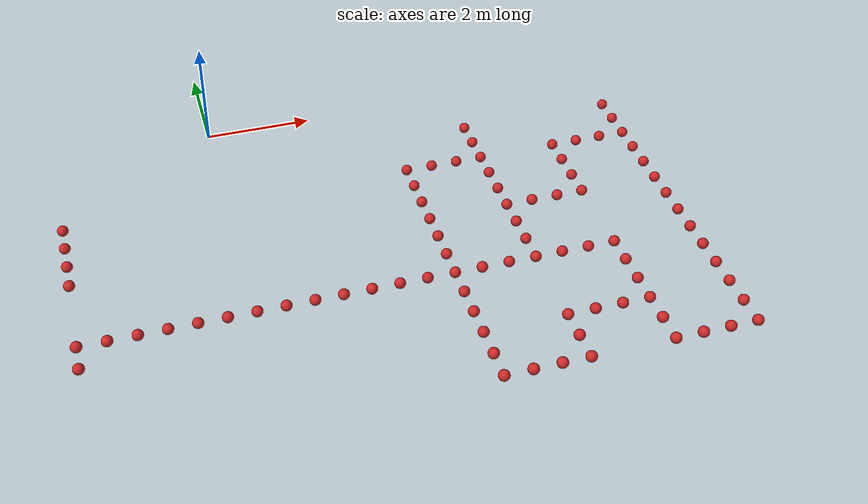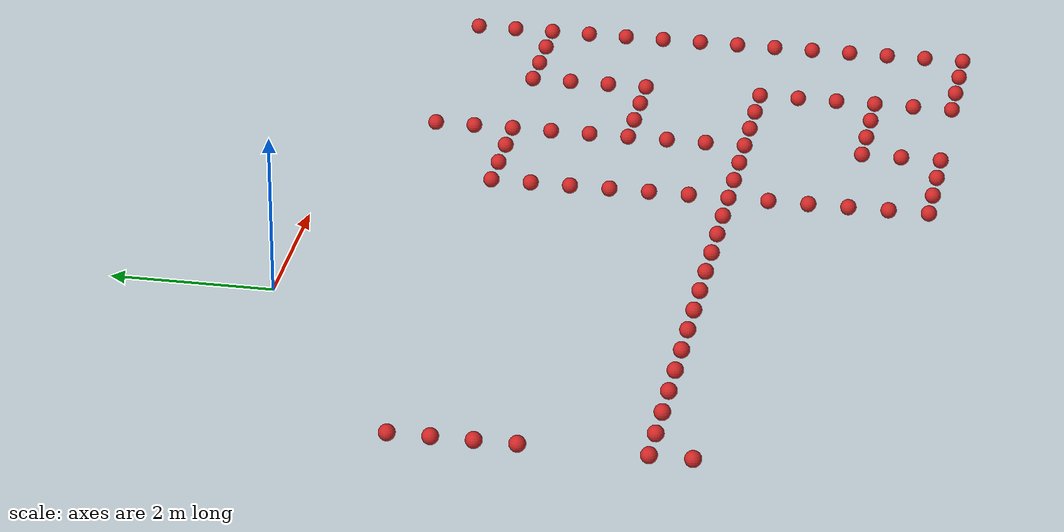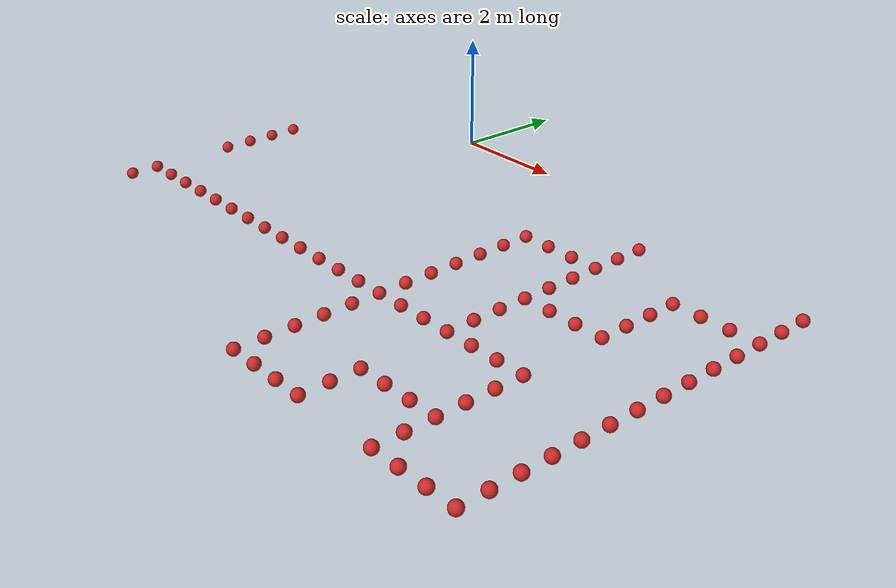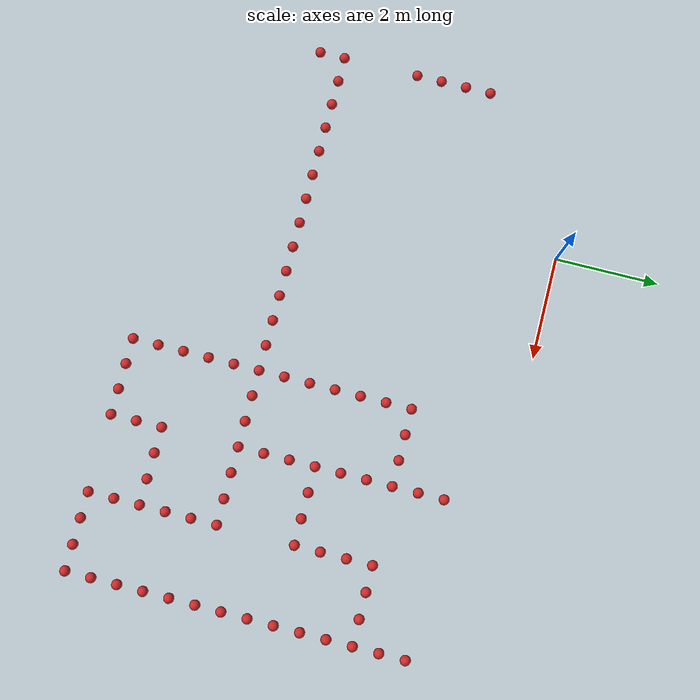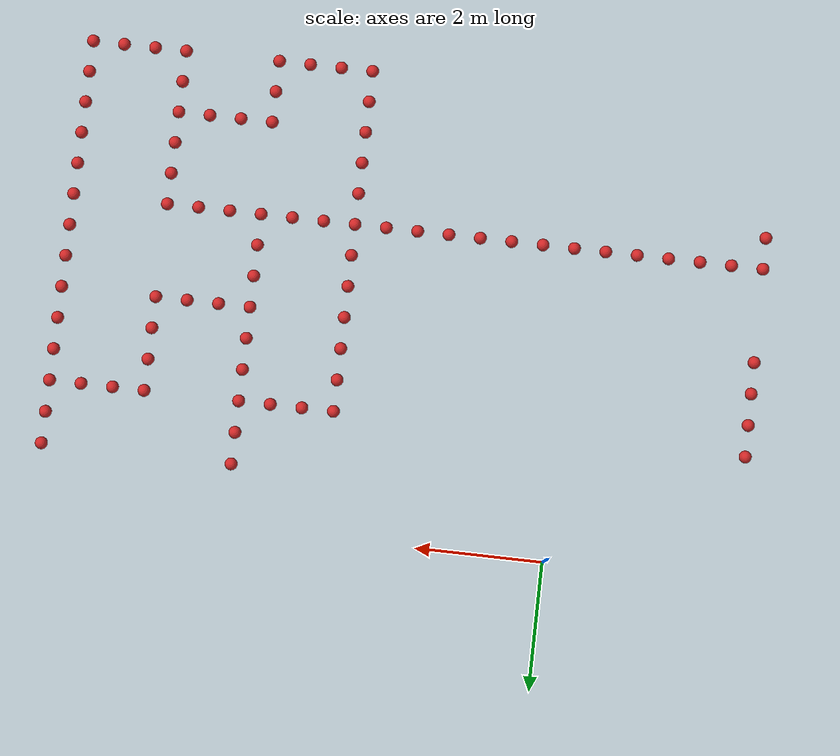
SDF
<sdf version="1.6">
 <model name="level1">
  <link name="Score_Point83">
   <collision name="Score_Point_Collision83">
    <geometry><sphere><radius>0.1</radius></sphere></geometry>
   </collision>
   <visual name="Score_Point_Visual83">
    <geometry><sphere><radius>0.1</radius></sphere></geometry>
    <material>
     <script><uri>file://media/materials/scripts/gazebo.material</uri><name>Gazebo/Red</name></script>
     <ambient>1 1 1 1</ambient>
    </material>
    <meta><layer>0</layer></meta>
   </visual>
   <pose>-3.0 -5.5 -0.08 0 0 0</pose>
   <script><uri>file://scripts/score_point_script.py</uri></script>
  </link>
  <link name="Score_Point84">
   <collision name="Score_Point_Collision84">
    <geometry><sphere><radius>0.1</radius></sphere></geometry>
   </collision>
   <visual name="Score_Point_Visual84">
    <geometry><sphere><radius>0.1</radius></sphere></geometry>
    <material>
     <script><uri>file://media/materials/scripts/gazebo.material</uri><name>Gazebo/Red</name></script>
     <ambient>1 1 1 1</ambient>
    </material>
    <meta><layer>0</layer></meta>
   </visual>
   <pose>-3.0 -5.0 -0.08 0 0 0</pose>
   <script><uri>file://scripts/score_point_script.py</uri></script>
  </link>
  <link name="Score_Point85">
   <collision name="Score_Point_Collision85">
    <geometry><sphere><radius>0.1</radius></sphere></geometry>
   </collision>
   <visual name="Score_Point_Visual85">
    <geometry><sphere><radius>0.1</radius></sphere></geometry>
    <material>
     <script><uri>file://media/materials/scripts/gazebo.material</uri><name>Gazebo/Red</name></script>
     <ambient>1 1 1 1</ambient>
    </material>
    <meta><layer>0</layer></meta>
   </visual>
   <pose>-3.0 -3.5 -0.08 0 0 0</pose>
   <script><uri>file://scripts/score_point_script.py</uri></script>
  </link>
  <link name="Score_Point86">
   <collision name="Score_Point_Collision86">
    <geometry><sphere><radius>0.1</radius></sphere></geometry>
   </collision>
   <visual name="Score_Point_Visual86">
    <geometry><sphere><radius>0.1</radius></sphere></geometry>
    <material>
     <script><uri>file://media/materials/scripts/gazebo.material</uri><name>Gazebo/Red</name></script>
     <ambient>1 1 1 1</ambient>
    </material>
    <meta><layer>0</layer></meta>
   </visual>
   <pose>-3.0 -3.0 -0.08 0 0 0</pose>
   <script><uri>file://scripts/score_point_script.py</uri></script>
  </link>
  <link name="Score_Point87">
   <collision name="Score_Point_Collision87">
    <geometry><sphere><radius>0.1</radius></sphere></geometry>
   </collision>
   <visual name="Score_Point_Visual87">
    <geometry><sphere><radius>0.1</radius></sphere></geometry>
    <material>
     <script><uri>file://media/materials/scripts/gazebo.material</uri><name>Gazebo/Red</name></script>
     <ambient>1 1 1 1</ambient>
    </material>
    <meta><layer>0</layer></meta>
   </visual>
   <pose>-3.0 -2.5 -0.08 0 0 0</pose>
   <script><uri>file://scripts/score_point_script.py</uri></script>
  </link>
  <link name="Score_Point88">
   <collision name="Score_Point_Collision88">
    <geometry><sphere><radius>0.1</radius></sphere></geometry>
   </collision>
   <visual name="Score_Point_Visual88">
    <geometry><sphere><radius>0.1</radius></sphere></geometry>
    <material>
     <script><uri>file://media/materials/scripts/gazebo.material</uri><name>Gazebo/Red</name></script>
     <ambient>1 1 1 1</ambient>
    </material>
    <meta><layer>0</layer></meta>
   </visual>
   <pose>-3.0 -2.0 -0.08 0 0 0</pose>
   <script><uri>file://scripts/score_point_script.py</uri></script>
  </link>
  <link name="Score_Point99">
   <collision name="Score_Point_Collision99">
    <geometry><sphere><radius>0.1</radius></sphere></geometry>
   </collision>
   <visual name="Score_Point_Visual99">
    <geometry><sphere><radius>0.1</radius></sphere></geometry>
    <material>
     <script><uri>file://media/materials/scripts/gazebo.material</uri><name>Gazebo/Red</name></script>
     <ambient>1 1 1 1</ambient>
    </material>
    <meta><layer>0</layer></meta>
   </visual>
   <pose>-2.5 -5.0 -0.08 0 0 0</pose>
   <script><uri>file://scripts/score_point_script.py</uri></script>
  </link>
  <link name="Score_Point101">
   <collision name="Score_Point_Collision101">
    <geometry><sphere><radius>0.1</radius></sphere></geometry>
   </collision>
   <visual name="Score_Point_Visual101">
    <geometry><sphere><radius>0.1</radius></sphere></geometry>
    <material>
     <script><uri>file://media/materials/scripts/gazebo.material</uri><name>Gazebo/Red</name></script>
     <ambient>1 1 1 1</ambient>
    </material>
    <meta><layer>0</layer></meta>
   </visual>
   <pose>-2.0 -5.0 -0.08 0 0 0</pose>
   <script><uri>file://scripts/score_point_script.py</uri></script>
  </link>
  <link name="Score_Point103">
   <collision name="Score_Point_Collision103">
    <geometry><sphere><radius>0.1</radius></sphere></geometry>
   </collision>
   <visual name="Score_Point_Visual103">
    <geometry><sphere><radius>0.1</radius></sphere></geometry>
    <material>
     <script><uri>file://media/materials/scripts/gazebo.material</uri><name>Gazebo/Red</name></script>
     <ambient>1 1 1 1</ambient>
    </material>
    <meta><layer>0</layer></meta>
   </visual>
   <pose>-1.5 -5.0 -0.08 0 0 0</pose>
   <script><uri>file://scripts/score_point_script.py</uri></script>
  </link>
  <link name="Score_Point105">
   <collision name="Score_Point_Collision105">
    <geometry><sphere><radius>0.1</radius></sphere></geometry>
   </collision>
   <visual name="Score_Point_Visual105">
    <geometry><sphere><radius>0.1</radius></sphere></geometry>
    <material>
     <script><uri>file://media/materials/scripts/gazebo.material</uri><name>Gazebo/Red</name></script>
     <ambient>1 1 1 1</ambient>
    </material>
    <meta><layer>0</layer></meta>
   </visual>
   <pose>-1.0 -5.0 -0.08 0 0 0</pose>
   <script><uri>file://scripts/score_point_script.py</uri></script>
  </link>
  <link name="Score_Point107">
   <collision name="Score_Point_Collision107">
    <geometry><sphere><radius>0.1</radius></sphere></geometry>
   </collision>
   <visual name="Score_Point_Visual107">
    <geometry><sphere><radius>0.1</radius></sphere></geometry>
    <material>
     <script><uri>file://media/materials/scripts/gazebo.material</uri><name>Gazebo/Red</name></script>
     <ambient>1 1 1 1</ambient>
    </material>
    <meta><layer>0</layer></meta>
   </visual>
   <pose>-0.5 -5.0 -0.08 0 0 0</pose>
   <script><uri>file://scripts/score_point_script.py</uri></script>
  </link>
  <link name="Score_Point109">
   <collision name="Score_Point_Collision109">
    <geometry><sphere><radius>0.1</radius></sphere></geometry>
   </collision>
   <visual name="Score_Point_Visual109">
    <geometry><sphere><radius>0.1</radius></sphere></geometry>
    <material>
     <script><uri>file://media/materials/scripts/gazebo.material</uri><name>Gazebo/Red</name></script>
     <ambient>1 1 1 1</ambient>
    </material>
    <meta><layer>0</layer></meta>
   </visual>
   <pose>0.0 -5.0 -0.08 0 0 0</pose>
   <script><uri>file://scripts/score_point_script.py</uri></script>
  </link>
  <link name="Score_Point111">
   <collision name="Score_Point_Collision111">
    <geometry><sphere><radius>0.1</radius></sphere></geometry>
   </collision>
   <visual name="Score_Point_Visual111">
    <geometry><sphere><radius>0.1</radius></sphere></geometry>
    <material>
     <script><uri>file://media/materials/scripts/gazebo.material</uri><name>Gazebo/Red</name></script>
     <ambient>1 1 1 1</ambient>
    </material>
    <meta><layer>0</layer></meta>
   </visual>
   <pose>0.5 -5.0 -0.08 0 0 0</pose>
   <script><uri>file://scripts/score_point_script.py</uri></script>
  </link>
  <link name="Score_Point113">
   <collision name="Score_Point_Collision113">
    <geometry><sphere><radius>0.1</radius></sphere></geometry>
   </collision>
   <visual name="Score_Point_Visual113">
    <geometry><sphere><radius>0.1</radius></sphere></geometry>
    <material>
     <script><uri>file://media/materials/scripts/gazebo.material</uri><name>Gazebo/Red</name></script>
     <ambient>1 1 1 1</ambient>
    </material>
    <meta><layer>0</layer></meta>
   </visual>
   <pose>1.0 -5.0 -0.08 0 0 0</pose>
   <script><uri>file://scripts/score_point_script.py</uri></script>
  </link>
  <link name="Score_Point115">
   <collision name="Score_Point_Collision115">
    <geometry><sphere><radius>0.1</radius></sphere></geometry>
   </collision>
   <visual name="Score_Point_Visual115">
    <geometry><sphere><radius>0.1</radius></sphere></geometry>
    <material>
     <script><uri>file://media/materials/scripts/gazebo.material</uri><name>Gazebo/Red</name></script>
     <ambient>1 1 1 1</ambient>
    </material>
    <meta><layer>0</layer></meta>
   </visual>
   <pose>1.5 -5.0 -0.08 0 0 0</pose>
   <script><uri>file://scripts/score_point_script.py</uri></script>
  </link>
  <link name="Score_Point117">
   <collision name="Score_Point_Collision117">
    <geometry><sphere><radius>0.1</radius></sphere></geometry>
   </collision>
   <visual name="Score_Point_Visual117">
    <geometry><sphere><radius>0.1</radius></sphere></geometry>
    <material>
     <script><uri>file://media/materials/scripts/gazebo.material</uri><name>Gazebo/Red</name></script>
     <ambient>1 1 1 1</ambient>
    </material>
    <meta><layer>0</layer></meta>
   </visual>
   <pose>2.0 -5.0 -0.08 0 0 0</pose>
   <script><uri>file://scripts/score_point_script.py</uri></script>
  </link>
  <link name="Score_Point119">
   <collision name="Score_Point_Collision119">
    <geometry><sphere><radius>0.1</radius></sphere></geometry>
   </collision>
   <visual name="Score_Point_Visual119">
    <geometry><sphere><radius>0.1</radius></sphere></geometry>
    <material>
     <script><uri>file://media/materials/scripts/gazebo.material</uri><name>Gazebo/Red</name></script>
     <ambient>1 1 1 1</ambient>
    </material>
    <meta><layer>0</layer></meta>
   </visual>
   <pose>2.5 -5.0 -0.08 0 0 0</pose>
   <script><uri>file://scripts/score_point_script.py</uri></script>
  </link>
  <link name="Score_Point121">
   <collision name="Score_Point_Collision121">
    <geometry><sphere><radius>0.1</radius></sphere></geometry>
   </collision>
   <visual name="Score_Point_Visual121">
    <geometry><sphere><radius>0.1</radius></sphere></geometry>
    <material>
     <script><uri>file://media/materials/scripts/gazebo.material</uri><name>Gazebo/Red</name></script>
     <ambient>1 1 1 1</ambient>
    </material>
    <meta><layer>0</layer></meta>
   </visual>
   <pose>3.0 -5.0 -0.08 0 0 0</pose>
   <script><uri>file://scripts/score_point_script.py</uri></script>
  </link>
  <link name="Score_Point123">
   <collision name="Score_Point_Collision123">
    <geometry><sphere><radius>0.1</radius></sphere></geometry>
   </collision>
   <visual name="Score_Point_Visual123">
    <geometry><sphere><radius>0.1</radius></sphere></geometry>
    <material>
     <script><uri>file://media/materials/scripts/gazebo.material</uri><name>Gazebo/Red</name></script>
     <ambient>1 1 1 1</ambient>
    </material>
    <meta><layer>0</layer></meta>
   </visual>
   <pose>3.5 -7.5 -0.08 0 0 0</pose>
   <script><uri>file://scripts/score_point_script.py</uri></script>
  </link>
  <link name="Score_Point124">
   <collision name="Score_Point_Collision124">
    <geometry><sphere><radius>0.1</radius></sphere></geometry>
   </collision>
   <visual name="Score_Point_Visual124">
    <geometry><sphere><radius>0.1</radius></sphere></geometry>
    <material>
     <script><uri>file://media/materials/scripts/gazebo.material</uri><name>Gazebo/Red</name></script>
     <ambient>1 1 1 1</ambient>
    </material>
    <meta><layer>0</layer></meta>
   </visual>
   <pose>3.5 -7.0 -0.08 0 0 0</pose>
   <script><uri>file://scripts/score_point_script.py</uri></script>
  </link>
  <link name="Score_Point125">
   <collision name="Score_Point_Collision125">
    <geometry><sphere><radius>0.1</radius></sphere></geometry>
   </collision>
   <visual name="Score_Point_Visual125">
    <geometry><sphere><radius>0.1</radius></sphere></geometry>
    <material>
     <script><uri>file://media/materials/scripts/gazebo.material</uri><name>Gazebo/Red</name></script>
     <ambient>1 1 1 1</ambient>
    </material>
    <meta><layer>0</layer></meta>
   </visual>
   <pose>3.5 -6.5 -0.08 0 0 0</pose>
   <script><uri>file://scripts/score_point_script.py</uri></script>
  </link>
  <link name="Score_Point126">
   <collision name="Score_Point_Collision126">
    <geometry><sphere><radius>0.1</radius></sphere></geometry>
   </collision>
   <visual name="Score_Point_Visual126">
    <geometry><sphere><radius>0.1</radius></sphere></geometry>
    <material>
     <script><uri>file://media/materials/scripts/gazebo.material</uri><name>Gazebo/Red</name></script>
     <ambient>1 1 1 1</ambient>
    </material>
    <meta><layer>0</layer></meta>
   </visual>
   <pose>3.5 -6.0 -0.08 0 0 0</pose>
   <script><uri>file://scripts/score_point_script.py</uri></script>
  </link>
  <link name="Score_Point127">
   <collision name="Score_Point_Collision127">
    <geometry><sphere><radius>0.1</radius></sphere></geometry>
   </collision>
   <visual name="Score_Point_Visual127">
    <geometry><sphere><radius>0.1</radius></sphere></geometry>
    <material>
     <script><uri>file://media/materials/scripts/gazebo.material</uri><name>Gazebo/Red</name></script>
     <ambient>1 1 1 1</ambient>
    </material>
    <meta><layer>0</layer></meta>
   </visual>
   <pose>3.5 -5.5 -0.08 0 0 0</pose>
   <script><uri>file://scripts/score_point_script.py</uri></script>
  </link>
  <link name="Score_Point128">
   <collision name="Score_Point_Collision128">
    <geometry><sphere><radius>0.1</radius></sphere></geometry>
   </collision>
   <visual name="Score_Point_Visual128">
    <geometry><sphere><radius>0.1</radius></sphere></geometry>
    <material>
     <script><uri>file://media/materials/scripts/gazebo.material</uri><name>Gazebo/Red</name></script>
     <ambient>1 1 1 1</ambient>
    </material>
    <meta><layer>0</layer></meta>
   </visual>
   <pose>3.5 -5.0 -0.08 0 0 0</pose>
   <script><uri>file://scripts/score_point_script.py</uri></script>
  </link>
  <link name="Score_Point129">
   <collision name="Score_Point_Collision129">
    <geometry><sphere><radius>0.1</radius></sphere></geometry>
   </collision>
   <visual name="Score_Point_Visual129">
    <geometry><sphere><radius>0.1</radius></sphere></geometry>
    <material>
     <script><uri>file://media/materials/scripts/gazebo.material</uri><name>Gazebo/Red</name></script>
     <ambient>1 1 1 1</ambient>
    </material>
    <meta><layer>0</layer></meta>
   </visual>
   <pose>3.5 -4.5 -0.08 0 0 0</pose>
   <script><uri>file://scripts/score_point_script.py</uri></script>
  </link>
  <link name="Score_Point130">
   <collision name="Score_Point_Collision130">
    <geometry><sphere><radius>0.1</radius></sphere></geometry>
   </collision>
   <visual name="Score_Point_Visual130">
    <geometry><sphere><radius>0.1</radius></sphere></geometry>
    <material>
     <script><uri>file://media/materials/scripts/gazebo.material</uri><name>Gazebo/Red</name></script>
     <ambient>1 1 1 1</ambient>
    </material>
    <meta><layer>0</layer></meta>
   </visual>
   <pose>3.5 -4.0 -0.08 0 0 0</pose>
   <script><uri>file://scripts/score_point_script.py</uri></script>
  </link>
  <link name="Score_Point131">
   <collision name="Score_Point_Collision131">
    <geometry><sphere><radius>0.1</radius></sphere></geometry>
   </collision>
   <visual name="Score_Point_Visual131">
    <geometry><sphere><radius>0.1</radius></sphere></geometry>
    <material>
     <script><uri>file://media/materials/scripts/gazebo.material</uri><name>Gazebo/Red</name></script>
     <ambient>1 1 1 1</ambient>
    </material>
    <meta><layer>0</layer></meta>
   </visual>
   <pose>3.5 -3.5 -0.08 0 0 0</pose>
   <script><uri>file://scripts/score_point_script.py</uri></script>
  </link>
  <link name="Score_Point132">
   <collision name="Score_Point_Collision132">
    <geometry><sphere><radius>0.1</radius></sphere></geometry>
   </collision>
   <visual name="Score_Point_Visual132">
    <geometry><sphere><radius>0.1</radius></sphere></geometry>
    <material>
     <script><uri>file://media/materials/scripts/gazebo.material</uri><name>Gazebo/Red</name></script>
     <ambient>1 1 1 1</ambient>
    </material>
    <meta><layer>0</layer></meta>
   </visual>
   <pose>3.5 -3.0 -0.08 0 0 0</pose>
   <script><uri>file://scripts/score_point_script.py</uri></script>
  </link>
  <link name="Score_Point133">
   <collision name="Score_Point_Collision133">
    <geometry><sphere><radius>0.1</radius></sphere></geometry>
   </collision>
   <visual name="Score_Point_Visual133">
    <geometry><sphere><radius>0.1</radius></sphere></geometry>
    <material>
     <script><uri>file://media/materials/scripts/gazebo.material</uri><name>Gazebo/Red</name></script>
     <ambient>1 1 1 1</ambient>
    </material>
    <meta><layer>0</layer></meta>
   </visual>
   <pose>3.5 -2.5 -0.08 0 0 0</pose>
   <script><uri>file://scripts/score_point_script.py</uri></script>
  </link>
  <link name="Score_Point134">
   <collision name="Score_Point_Collision134">
    <geometry><sphere><radius>0.1</radius></sphere></geometry>
   </collision>
   <visual name="Score_Point_Visual134">
    <geometry><sphere><radius>0.1</radius></sphere></geometry>
    <material>
     <script><uri>file://media/materials/scripts/gazebo.material</uri><name>Gazebo/Red</name></script>
     <ambient>1 1 1 1</ambient>
    </material>
    <meta><layer>0</layer></meta>
   </visual>
   <pose>3.5 -2.0 -0.08 0 0 0</pose>
   <script><uri>file://scripts/score_point_script.py</uri></script>
  </link>
  <link name="Score_Point147">
   <collision name="Score_Point_Collision147">
    <geometry><sphere><radius>0.1</radius></sphere></geometry>
   </collision>
   <visual name="Score_Point_Visual147">
    <geometry><sphere><radius>0.1</radius></sphere></geometry>
    <material>
     <script><uri>file://media/materials/scripts/gazebo.material</uri><name>Gazebo/Red</name></script>
     <ambient>1 1 1 1</ambient>
    </material>
    <meta><layer>0</layer></meta>
   </visual>
   <pose>4.0 -7.5 -0.08 0 0 0</pose>
   <script><uri>file://scripts/score_point_script.py</uri></script>
  </link>
  <link name="Score_Point148">
   <collision name="Score_Point_Collision148">
    <geometry><sphere><radius>0.1</radius></sphere></geometry>
   </collision>
   <visual name="Score_Point_Visual148">
    <geometry><sphere><radius>0.1</radius></sphere></geometry>
    <material>
     <script><uri>file://media/materials/scripts/gazebo.material</uri><name>Gazebo/Red</name></script>
     <ambient>1 1 1 1</ambient>
    </material>
    <meta><layer>0</layer></meta>
   </visual>
   <pose>4.0 -5.0 -0.08 0 0 0</pose>
   <script><uri>file://scripts/score_point_script.py</uri></script>
  </link>
  <link name="Score_Point149">
   <collision name="Score_Point_Collision149">
    <geometry><sphere><radius>0.1</radius></sphere></geometry>
   </collision>
   <visual name="Score_Point_Visual149">
    <geometry><sphere><radius>0.1</radius></sphere></geometry>
    <material>
     <script><uri>file://media/materials/scripts/gazebo.material</uri><name>Gazebo/Red</name></script>
     <ambient>1 1 1 1</ambient>
    </material>
    <meta><layer>0</layer></meta>
   </visual>
   <pose>4.0 -2.0 -0.08 0 0 0</pose>
   <script><uri>file://scripts/score_point_script.py</uri></script>
  </link>
  <link name="Score_Point153">
   <collision name="Score_Point_Collision153">
    <geometry><sphere><radius>0.1</radius></sphere></geometry>
   </collision>
   <visual name="Score_Point_Visual153">
    <geometry><sphere><radius>0.1</radius></sphere></geometry>
    <material>
     <script><uri>file://media/materials/scripts/gazebo.material</uri><name>Gazebo/Red</name></script>
     <ambient>1 1 1 1</ambient>
    </material>
    <meta><layer>0</layer></meta>
   </visual>
   <pose>4.5 -7.5 -0.08 0 0 0</pose>
   <script><uri>file://scripts/score_point_script.py</uri></script>
  </link>
  <link name="Score_Point154">
   <collision name="Score_Point_Collision154">
    <geometry><sphere><radius>0.1</radius></sphere></geometry>
   </collision>
   <visual name="Score_Point_Visual154">
    <geometry><sphere><radius>0.1</radius></sphere></geometry>
    <material>
     <script><uri>file://media/materials/scripts/gazebo.material</uri><name>Gazebo/Red</name></script>
     <ambient>1 1 1 1</ambient>
    </material>
    <meta><layer>0</layer></meta>
   </visual>
   <pose>4.5 -5.0 -0.08 0 0 0</pose>
   <script><uri>file://scripts/score_point_script.py</uri></script>
  </link>
  <link name="Score_Point155">
   <collision name="Score_Point_Collision155">
    <geometry><sphere><radius>0.1</radius></sphere></geometry>
   </collision>
   <visual name="Score_Point_Visual155">
    <geometry><sphere><radius>0.1</radius></sphere></geometry>
    <material>
     <script><uri>file://media/materials/scripts/gazebo.material</uri><name>Gazebo/Red</name></script>
     <ambient>1 1 1 1</ambient>
    </material>
    <meta><layer>0</layer></meta>
   </visual>
   <pose>4.5 -2.0 -0.08 0 0 0</pose>
   <script><uri>file://scripts/score_point_script.py</uri></script>
  </link>
  <link name="Score_Point159">
   <collision name="Score_Point_Collision159">
    <geometry><sphere><radius>0.1</radius></sphere></geometry>
   </collision>
   <visual name="Score_Point_Visual159">
    <geometry><sphere><radius>0.1</radius></sphere></geometry>
    <material>
     <script><uri>file://media/materials/scripts/gazebo.material</uri><name>Gazebo/Red</name></script>
     <ambient>1 1 1 1</ambient>
    </material>
    <meta><layer>0</layer></meta>
   </visual>
   <pose>5.0 -7.5 -0.08 0 0 0</pose>
   <script><uri>file://scripts/score_point_script.py</uri></script>
  </link>
  <link name="Score_Point160">
   <collision name="Score_Point_Collision160">
    <geometry><sphere><radius>0.1</radius></sphere></geometry>
   </collision>
   <visual name="Score_Point_Visual160">
    <geometry><sphere><radius>0.1</radius></sphere></geometry>
    <material>
     <script><uri>file://media/materials/scripts/gazebo.material</uri><name>Gazebo/Red</name></script>
     <ambient>1 1 1 1</ambient>
    </material>
    <meta><layer>0</layer></meta>
   </visual>
   <pose>5.0 -7.0 -0.08 0 0 0</pose>
   <script><uri>file://scripts/score_point_script.py</uri></script>
  </link>
  <link name="Score_Point161">
   <collision name="Score_Point_Collision161">
    <geometry><sphere><radius>0.1</radius></sphere></geometry>
   </collision>
   <visual name="Score_Point_Visual161">
    <geometry><sphere><radius>0.1</radius></sphere></geometry>
    <material>
     <script><uri>file://media/materials/scripts/gazebo.material</uri><name>Gazebo/Red</name></script>
     <ambient>1 1 1 1</ambient>
    </material>
    <meta><layer>0</layer></meta>
   </visual>
   <pose>5.0 -6.5 -0.08 0 0 0</pose>
   <script><uri>file://scripts/score_point_script.py</uri></script>
  </link>
  <link name="Score_Point162">
   <collision name="Score_Point_Collision162">
    <geometry><sphere><radius>0.1</radius></sphere></geometry>
   </collision>
   <visual name="Score_Point_Visual162">
    <geometry><sphere><radius>0.1</radius></sphere></geometry>
    <material>
     <script><uri>file://media/materials/scripts/gazebo.material</uri><name>Gazebo/Red</name></script>
     <ambient>1 1 1 1</ambient>
    </material>
    <meta><layer>0</layer></meta>
   </visual>
   <pose>5.0 -5.0 -0.08 0 0 0</pose>
   <script><uri>file://scripts/score_point_script.py</uri></script>
  </link>
  <link name="Score_Point163">
   <collision name="Score_Point_Collision163">
    <geometry><sphere><radius>0.1</radius></sphere></geometry>
   </collision>
   <visual name="Score_Point_Visual163">
    <geometry><sphere><radius>0.1</radius></sphere></geometry>
    <material>
     <script><uri>file://media/materials/scripts/gazebo.material</uri><name>Gazebo/Red</name></script>
     <ambient>1 1 1 1</ambient>
    </material>
    <meta><layer>0</layer></meta>
   </visual>
   <pose>5.0 -4.5 -0.08 0 0 0</pose>
   <script><uri>file://scripts/score_point_script.py</uri></script>
  </link>
  <link name="Score_Point164">
   <collision name="Score_Point_Collision164">
    <geometry><sphere><radius>0.1</radius></sphere></geometry>
   </collision>
   <visual name="Score_Point_Visual164">
    <geometry><sphere><radius>0.1</radius></sphere></geometry>
    <material>
     <script><uri>file://media/materials/scripts/gazebo.material</uri><name>Gazebo/Red</name></script>
     <ambient>1 1 1 1</ambient>
    </material>
    <meta><layer>0</layer></meta>
   </visual>
   <pose>5.0 -4.0 -0.08 0 0 0</pose>
   <script><uri>file://scripts/score_point_script.py</uri></script>
  </link>
  <link name="Score_Point165">
   <collision name="Score_Point_Collision165">
    <geometry><sphere><radius>0.1</radius></sphere></geometry>
   </collision>
   <visual name="Score_Point_Visual165">
    <geometry><sphere><radius>0.1</radius></sphere></geometry>
    <material>
     <script><uri>file://media/materials/scripts/gazebo.material</uri><name>Gazebo/Red</name></script>
     <ambient>1 1 1 1</ambient>
    </material>
    <meta><layer>0</layer></meta>
   </visual>
   <pose>5.0 -3.5 -0.08 0 0 0</pose>
   <script><uri>file://scripts/score_point_script.py</uri></script>
  </link>
  <link name="Score_Point166">
   <collision name="Score_Point_Collision166">
    <geometry><sphere><radius>0.1</radius></sphere></geometry>
   </collision>
   <visual name="Score_Point_Visual166">
    <geometry><sphere><radius>0.1</radius></sphere></geometry>
    <material>
     <script><uri>file://media/materials/scripts/gazebo.material</uri><name>Gazebo/Red</name></script>
     <ambient>1 1 1 1</ambient>
    </material>
    <meta><layer>0</layer></meta>
   </visual>
   <pose>5.0 -3.0 -0.08 0 0 0</pose>
   <script><uri>file://scripts/score_point_script.py</uri></script>
  </link>
  <link name="Score_Point167">
   <collision name="Score_Point_Collision167">
    <geometry><sphere><radius>0.1</radius></sphere></geometry>
   </collision>
   <visual name="Score_Point_Visual167">
    <geometry><sphere><radius>0.1</radius></sphere></geometry>
    <material>
     <script><uri>file://media/materials/scripts/gazebo.material</uri><name>Gazebo/Red</name></script>
     <ambient>1 1 1 1</ambient>
    </material>
    <meta><layer>0</layer></meta>
   </visual>
   <pose>5.0 -2.5 -0.08 0 0 0</pose>
   <script><uri>file://scripts/score_point_script.py</uri></script>
  </link>
  <link name="Score_Point168">
   <collision name="Score_Point_Collision168">
    <geometry><sphere><radius>0.1</radius></sphere></geometry>
   </collision>
   <visual name="Score_Point_Visual168">
    <geometry><sphere><radius>0.1</radius></sphere></geometry>
    <material>
     <script><uri>file://media/materials/scripts/gazebo.material</uri><name>Gazebo/Red</name></script>
     <ambient>1 1 1 1</ambient>
    </material>
    <meta><layer>0</layer></meta>
   </visual>
   <pose>5.0 -2.0 -0.08 0 0 0</pose>
   <script><uri>file://scripts/score_point_script.py</uri></script>
  </link>
  <link name="Score_Point169">
   <collision name="Score_Point_Collision169">
    <geometry><sphere><radius>0.1</radius></sphere></geometry>
   </collision>
   <visual name="Score_Point_Visual169">
    <geometry><sphere><radius>0.1</radius></sphere></geometry>
    <material>
     <script><uri>file://media/materials/scripts/gazebo.material</uri><name>Gazebo/Red</name></script>
     <ambient>1 1 1 1</ambient>
    </material>
    <meta><layer>0</layer></meta>
   </visual>
   <pose>5.0 -1.5 -0.08 0 0 0</pose>
   <script><uri>file://scripts/score_point_script.py</uri></script>
  </link>
  <link name="Score_Point170">
   <collision name="Score_Point_Collision170">
    <geometry><sphere><radius>0.1</radius></sphere></geometry>
   </collision>
   <visual name="Score_Point_Visual170">
    <geometry><sphere><radius>0.1</radius></sphere></geometry>
    <material>
     <script><uri>file://media/materials/scripts/gazebo.material</uri><name>Gazebo/Red</name></script>
     <ambient>1 1 1 1</ambient>
    </material>
    <meta><layer>0</layer></meta>
   </visual>
   <pose>5.0 -1.0 -0.08 0 0 0</pose>
   <script><uri>file://scripts/score_point_script.py</uri></script>
  </link>
  <link name="Score_Point181">
   <collision name="Score_Point_Collision181">
    <geometry><sphere><radius>0.1</radius></sphere></geometry>
   </collision>
   <visual name="Score_Point_Visual181">
    <geometry><sphere><radius>0.1</radius></sphere></geometry>
    <material>
     <script><uri>file://media/materials/scripts/gazebo.material</uri><name>Gazebo/Red</name></script>
     <ambient>1 1 1 1</ambient>
    </material>
    <meta><layer>0</layer></meta>
   </visual>
   <pose>5.5 -6.5 -0.08 0 0 0</pose>
   <script><uri>file://scripts/score_point_script.py</uri></script>
  </link>
  <link name="Score_Point182">
   <collision name="Score_Point_Collision182">
    <geometry><sphere><radius>0.1</radius></sphere></geometry>
   </collision>
   <visual name="Score_Point_Visual182">
    <geometry><sphere><radius>0.1</radius></sphere></geometry>
    <material>
     <script><uri>file://media/materials/scripts/gazebo.material</uri><name>Gazebo/Red</name></script>
     <ambient>1 1 1 1</ambient>
    </material>
    <meta><layer>0</layer></meta>
   </visual>
   <pose>5.5 -5.0 -0.08 0 0 0</pose>
   <script><uri>file://scripts/score_point_script.py</uri></script>
  </link>
  <link name="Score_Point183">
   <collision name="Score_Point_Collision183">
    <geometry><sphere><radius>0.1</radius></sphere></geometry>
   </collision>
   <visual name="Score_Point_Visual183">
    <geometry><sphere><radius>0.1</radius></sphere></geometry>
    <material>
     <script><uri>file://media/materials/scripts/gazebo.material</uri><name>Gazebo/Red</name></script>
     <ambient>1 1 1 1</ambient>
    </material>
    <meta><layer>0</layer></meta>
   </visual>
   <pose>5.5 -3.5 -0.08 0 0 0</pose>
   <script><uri>file://scripts/score_point_script.py</uri></script>
  </link>
  <link name="Score_Point187">
   <collision name="Score_Point_Collision187">
    <geometry><sphere><radius>0.1</radius></sphere></geometry>
   </collision>
   <visual name="Score_Point_Visual187">
    <geometry><sphere><radius>0.1</radius></sphere></geometry>
    <material>
     <script><uri>file://media/materials/scripts/gazebo.material</uri><name>Gazebo/Red</name></script>
     <ambient>1 1 1 1</ambient>
    </material>
    <meta><layer>0</layer></meta>
   </visual>
   <pose>6.0 -6.5 -0.08 0 0 0</pose>
   <script><uri>file://scripts/score_point_script.py</uri></script>
  </link>
  <link name="Score_Point188">
   <collision name="Score_Point_Collision188">
    <geometry><sphere><radius>0.1</radius></sphere></geometry>
   </collision>
   <visual name="Score_Point_Visual188">
    <geometry><sphere><radius>0.1</radius></sphere></geometry>
    <material>
     <script><uri>file://media/materials/scripts/gazebo.material</uri><name>Gazebo/Red</name></script>
     <ambient>1 1 1 1</ambient>
    </material>
    <meta><layer>0</layer></meta>
   </visual>
   <pose>6.0 -5.0 -0.08 0 0 0</pose>
   <script><uri>file://scripts/score_point_script.py</uri></script>
  </link>
  <link name="Score_Point189">
   <collision name="Score_Point_Collision189">
    <geometry><sphere><radius>0.1</radius></sphere></geometry>
   </collision>
   <visual name="Score_Point_Visual189">
    <geometry><sphere><radius>0.1</radius></sphere></geometry>
    <material>
     <script><uri>file://media/materials/scripts/gazebo.material</uri><name>Gazebo/Red</name></script>
     <ambient>1 1 1 1</ambient>
    </material>
    <meta><layer>0</layer></meta>
   </visual>
   <pose>6.0 -3.5 -0.08 0 0 0</pose>
   <script><uri>file://scripts/score_point_script.py</uri></script>
  </link>
  <link name="Score_Point193">
   <collision name="Score_Point_Collision193">
    <geometry><sphere><radius>0.1</radius></sphere></geometry>
   </collision>
   <visual name="Score_Point_Visual193">
    <geometry><sphere><radius>0.1</radius></sphere></geometry>
    <material>
     <script><uri>file://media/materials/scripts/gazebo.material</uri><name>Gazebo/Red</name></script>
     <ambient>1 1 1 1</ambient>
    </material>
    <meta><layer>0</layer></meta>
   </visual>
   <pose>6.5 -7.5 -0.08 0 0 0</pose>
   <script><uri>file://scripts/score_point_script.py</uri></script>
  </link>
  <link name="Score_Point194">
   <collision name="Score_Point_Collision194">
    <geometry><sphere><radius>0.1</radius></sphere></geometry>
   </collision>
   <visual name="Score_Point_Visual194">
    <geometry><sphere><radius>0.1</radius></sphere></geometry>
    <material>
     <script><uri>file://media/materials/scripts/gazebo.material</uri><name>Gazebo/Red</name></script>
     <ambient>1 1 1 1</ambient>
    </material>
    <meta><layer>0</layer></meta>
   </visual>
   <pose>6.5 -7.0 -0.08 0 0 0</pose>
   <script><uri>file://scripts/score_point_script.py</uri></script>
  </link>
  <link name="Score_Point195">
   <collision name="Score_Point_Collision195">
    <geometry><sphere><radius>0.1</radius></sphere></geometry>
   </collision>
   <visual name="Score_Point_Visual195">
    <geometry><sphere><radius>0.1</radius></sphere></geometry>
    <material>
     <script><uri>file://media/materials/scripts/gazebo.material</uri><name>Gazebo/Red</name></script>
     <ambient>1 1 1 1</ambient>
    </material>
    <meta><layer>0</layer></meta>
   </visual>
   <pose>6.5 -6.5 -0.08 0 0 0</pose>
   <script><uri>file://scripts/score_point_script.py</uri></script>
  </link>
  <link name="Score_Point196">
   <collision name="Score_Point_Collision196">
    <geometry><sphere><radius>0.1</radius></sphere></geometry>
   </collision>
   <visual name="Score_Point_Visual196">
    <geometry><sphere><radius>0.1</radius></sphere></geometry>
    <material>
     <script><uri>file://media/materials/scripts/gazebo.material</uri><name>Gazebo/Red</name></script>
     <ambient>1 1 1 1</ambient>
    </material>
    <meta><layer>0</layer></meta>
   </visual>
   <pose>6.5 -6.0 -0.08 0 0 0</pose>
   <script><uri>file://scripts/score_point_script.py</uri></script>
  </link>
  <link name="Score_Point197">
   <collision name="Score_Point_Collision197">
    <geometry><sphere><radius>0.1</radius></sphere></geometry>
   </collision>
   <visual name="Score_Point_Visual197">
    <geometry><sphere><radius>0.1</radius></sphere></geometry>
    <material>
     <script><uri>file://media/materials/scripts/gazebo.material</uri><name>Gazebo/Red</name></script>
     <ambient>1 1 1 1</ambient>
    </material>
    <meta><layer>0</layer></meta>
   </visual>
   <pose>6.5 -5.5 -0.08 0 0 0</pose>
   <script><uri>file://scripts/score_point_script.py</uri></script>
  </link>
  <link name="Score_Point198">
   <collision name="Score_Point_Collision198">
    <geometry><sphere><radius>0.1</radius></sphere></geometry>
   </collision>
   <visual name="Score_Point_Visual198">
    <geometry><sphere><radius>0.1</radius></sphere></geometry>
    <material>
     <script><uri>file://media/materials/scripts/gazebo.material</uri><name>Gazebo/Red</name></script>
     <ambient>1 1 1 1</ambient>
    </material>
    <meta><layer>0</layer></meta>
   </visual>
   <pose>6.5 -5.0 -0.08 0 0 0</pose>
   <script><uri>file://scripts/score_point_script.py</uri></script>
  </link>
  <link name="Score_Point199">
   <collision name="Score_Point_Collision199">
    <geometry><sphere><radius>0.1</radius></sphere></geometry>
   </collision>
   <visual name="Score_Point_Visual199">
    <geometry><sphere><radius>0.1</radius></sphere></geometry>
    <material>
     <script><uri>file://media/materials/scripts/gazebo.material</uri><name>Gazebo/Red</name></script>
     <ambient>1 1 1 1</ambient>
    </material>
    <meta><layer>0</layer></meta>
   </visual>
   <pose>6.5 -3.5 -0.08 0 0 0</pose>
   <script><uri>file://scripts/score_point_script.py</uri></script>
  </link>
  <link name="Score_Point200">
   <collision name="Score_Point_Collision200">
    <geometry><sphere><radius>0.1</radius></sphere></geometry>
   </collision>
   <visual name="Score_Point_Visual200">
    <geometry><sphere><radius>0.1</radius></sphere></geometry>
    <material>
     <script><uri>file://media/materials/scripts/gazebo.material</uri><name>Gazebo/Red</name></script>
     <ambient>1 1 1 1</ambient>
    </material>
    <meta><layer>0</layer></meta>
   </visual>
   <pose>6.5 -3.0 -0.08 0 0 0</pose>
   <script><uri>file://scripts/score_point_script.py</uri></script>
  </link>
  <link name="Score_Point201">
   <collision name="Score_Point_Collision201">
    <geometry><sphere><radius>0.1</radius></sphere></geometry>
   </collision>
   <visual name="Score_Point_Visual201">
    <geometry><sphere><radius>0.1</radius></sphere></geometry>
    <material>
     <script><uri>file://media/materials/scripts/gazebo.material</uri><name>Gazebo/Red</name></script>
     <ambient>1 1 1 1</ambient>
    </material>
    <meta><layer>0</layer></meta>
   </visual>
   <pose>6.5 -2.5 -0.08 0 0 0</pose>
   <script><uri>file://scripts/score_point_script.py</uri></script>
  </link>
  <link name="Score_Point202">
   <collision name="Score_Point_Collision202">
    <geometry><sphere><radius>0.1</radius></sphere></geometry>
   </collision>
   <visual name="Score_Point_Visual202">
    <geometry><sphere><radius>0.1</radius></sphere></geometry>
    <material>
     <script><uri>file://media/materials/scripts/gazebo.material</uri><name>Gazebo/Red</name></script>
     <ambient>1 1 1 1</ambient>
    </material>
    <meta><layer>0</layer></meta>
   </visual>
   <pose>6.5 -2.0 -0.08 0 0 0</pose>
   <script><uri>file://scripts/score_point_script.py</uri></script>
  </link>
  <link name="Score_Point213">
   <collision name="Score_Point_Collision213">
    <geometry><sphere><radius>0.1</radius></sphere></geometry>
   </collision>
   <visual name="Score_Point_Visual213">
    <geometry><sphere><radius>0.1</radius></sphere></geometry>
    <material>
     <script><uri>file://media/materials/scripts/gazebo.material</uri><name>Gazebo/Red</name></script>
     <ambient>1 1 1 1</ambient>
    </material>
    <meta><layer>0</layer></meta>
   </visual>
   <pose>7.0 -7.5 -0.08 0 0 0</pose>
   <script><uri>file://scripts/score_point_script.py</uri></script>
  </link>
  <link name="Score_Point214">
   <collision name="Score_Point_Collision214">
    <geometry><sphere><radius>0.1</radius></sphere></geometry>
   </collision>
   <visual name="Score_Point_Visual214">
    <geometry><sphere><radius>0.1</radius></sphere></geometry>
    <material>
     <script><uri>file://media/materials/scripts/gazebo.material</uri><name>Gazebo/Red</name></script>
     <ambient>1 1 1 1</ambient>
    </material>
    <meta><layer>0</layer></meta>
   </visual>
   <pose>7.0 -2.0 -0.08 0 0 0</pose>
   <script><uri>file://scripts/score_point_script.py</uri></script>
  </link>
  <link name="Score_Point217">
   <collision name="Score_Point_Collision217">
    <geometry><sphere><radius>0.1</radius></sphere></geometry>
   </collision>
   <visual name="Score_Point_Visual217">
    <geometry><sphere><radius>0.1</radius></sphere></geometry>
    <material>
     <script><uri>file://media/materials/scripts/gazebo.material</uri><name>Gazebo/Red</name></script>
     <ambient>1 1 1 1</ambient>
    </material>
    <meta><layer>0</layer></meta>
   </visual>
   <pose>7.5 -7.5 -0.08 0 0 0</pose>
   <script><uri>file://scripts/score_point_script.py</uri></script>
  </link>
  <link name="Score_Point218">
   <collision name="Score_Point_Collision218">
    <geometry><sphere><radius>0.1</radius></sphere></geometry>
   </collision>
   <visual name="Score_Point_Visual218">
    <geometry><sphere><radius>0.1</radius></sphere></geometry>
    <material>
     <script><uri>file://media/materials/scripts/gazebo.material</uri><name>Gazebo/Red</name></script>
     <ambient>1 1 1 1</ambient>
    </material>
    <meta><layer>0</layer></meta>
   </visual>
   <pose>7.5 -2.0 -0.08 0 0 0</pose>
   <script><uri>file://scripts/score_point_script.py</uri></script>
  </link>
  <link name="Score_Point221">
   <collision name="Score_Point_Collision221">
    <geometry><sphere><radius>0.1</radius></sphere></geometry>
   </collision>
   <visual name="Score_Point_Visual221">
    <geometry><sphere><radius>0.1</radius></sphere></geometry>
    <material>
     <script><uri>file://media/materials/scripts/gazebo.material</uri><name>Gazebo/Red</name></script>
     <ambient>1 1 1 1</ambient>
    </material>
    <meta><layer>0</layer></meta>
   </visual>
   <pose>8.0 -7.5 -0.08 0 0 0</pose>
   <script><uri>file://scripts/score_point_script.py</uri></script>
  </link>
  <link name="Score_Point222">
   <collision name="Score_Point_Collision222">
    <geometry><sphere><radius>0.1</radius></sphere></geometry>
   </collision>
   <visual name="Score_Point_Visual222">
    <geometry><sphere><radius>0.1</radius></sphere></geometry>
    <material>
     <script><uri>file://media/materials/scripts/gazebo.material</uri><name>Gazebo/Red</name></script>
     <ambient>1 1 1 1</ambient>
    </material>
    <meta><layer>0</layer></meta>
   </visual>
   <pose>8.0 -7.0 -0.08 0 0 0</pose>
   <script><uri>file://scripts/score_point_script.py</uri></script>
  </link>
  <link name="Score_Point223">
   <collision name="Score_Point_Collision223">
    <geometry><sphere><radius>0.1</radius></sphere></geometry>
   </collision>
   <visual name="Score_Point_Visual223">
    <geometry><sphere><radius>0.1</radius></sphere></geometry>
    <material>
     <script><uri>file://media/materials/scripts/gazebo.material</uri><name>Gazebo/Red</name></script>
     <ambient>1 1 1 1</ambient>
    </material>
    <meta><layer>0</layer></meta>
   </visual>
   <pose>8.0 -6.5 -0.08 0 0 0</pose>
   <script><uri>file://scripts/score_point_script.py</uri></script>
  </link>
  <link name="Score_Point224">
   <collision name="Score_Point_Collision224">
    <geometry><sphere><radius>0.1</radius></sphere></geometry>
   </collision>
   <visual name="Score_Point_Visual224">
    <geometry><sphere><radius>0.1</radius></sphere></geometry>
    <material>
     <script><uri>file://media/materials/scripts/gazebo.material</uri><name>Gazebo/Red</name></script>
     <ambient>1 1 1 1</ambient>
    </material>
    <meta><layer>0</layer></meta>
   </visual>
   <pose>8.0 -6.0 -0.08 0 0 0</pose>
   <script><uri>file://scripts/score_point_script.py</uri></script>
  </link>
  <link name="Score_Point225">
   <collision name="Score_Point_Collision225">
    <geometry><sphere><radius>0.1</radius></sphere></geometry>
   </collision>
   <visual name="Score_Point_Visual225">
    <geometry><sphere><radius>0.1</radius></sphere></geometry>
    <material>
     <script><uri>file://media/materials/scripts/gazebo.material</uri><name>Gazebo/Red</name></script>
     <ambient>1 1 1 1</ambient>
    </material>
    <meta><layer>0</layer></meta>
   </visual>
   <pose>8.0 -5.5 -0.08 0 0 0</pose>
   <script><uri>file://scripts/score_point_script.py</uri></script>
  </link>
  <link name="Score_Point226">
   <collision name="Score_Point_Collision226">
    <geometry><sphere><radius>0.1</radius></sphere></geometry>
   </collision>
   <visual name="Score_Point_Visual226">
    <geometry><sphere><radius>0.1</radius></sphere></geometry>
    <material>
     <script><uri>file://media/materials/scripts/gazebo.material</uri><name>Gazebo/Red</name></script>
     <ambient>1 1 1 1</ambient>
    </material>
    <meta><layer>0</layer></meta>
   </visual>
   <pose>8.0 -5.0 -0.08 0 0 0</pose>
   <script><uri>file://scripts/score_point_script.py</uri></script>
  </link>
  <link name="Score_Point227">
   <collision name="Score_Point_Collision227">
    <geometry><sphere><radius>0.1</radius></sphere></geometry>
   </collision>
   <visual name="Score_Point_Visual227">
    <geometry><sphere><radius>0.1</radius></sphere></geometry>
    <material>
     <script><uri>file://media/materials/scripts/gazebo.material</uri><name>Gazebo/Red</name></script>
     <ambient>1 1 1 1</ambient>
    </material>
    <meta><layer>0</layer></meta>
   </visual>
   <pose>8.0 -4.5 -0.08 0 0 0</pose>
   <script><uri>file://scripts/score_point_script.py</uri></script>
  </link>
  <link name="Score_Point228">
   <collision name="Score_Point_Collision228">
    <geometry><sphere><radius>0.1</radius></sphere></geometry>
   </collision>
   <visual name="Score_Point_Visual228">
    <geometry><sphere><radius>0.1</radius></sphere></geometry>
    <material>
     <script><uri>file://media/materials/scripts/gazebo.material</uri><name>Gazebo/Red</name></script>
     <ambient>1 1 1 1</ambient>
    </material>
    <meta><layer>0</layer></meta>
   </visual>
   <pose>8.0 -4.0 -0.08 0 0 0</pose>
   <script><uri>file://scripts/score_point_script.py</uri></script>
  </link>
  <link name="Score_Point229">
   <collision name="Score_Point_Collision229">
    <geometry><sphere><radius>0.1</radius></sphere></geometry>
   </collision>
   <visual name="Score_Point_Visual229">
    <geometry><sphere><radius>0.1</radius></sphere></geometry>
    <material>
     <script><uri>file://media/materials/scripts/gazebo.material</uri><name>Gazebo/Red</name></script>
     <ambient>1 1 1 1</ambient>
    </material>
    <meta><layer>0</layer></meta>
   </visual>
   <pose>8.0 -3.5 -0.08 0 0 0</pose>
   <script><uri>file://scripts/score_point_script.py</uri></script>
  </link>
  <link name="Score_Point230">
   <collision name="Score_Point_Collision230">
    <geometry><sphere><radius>0.1</radius></sphere></geometry>
   </collision>
   <visual name="Score_Point_Visual230">
    <geometry><sphere><radius>0.1</radius></sphere></geometry>
    <material>
     <script><uri>file://media/materials/scripts/gazebo.material</uri><name>Gazebo/Red</name></script>
     <ambient>1 1 1 1</ambient>
    </material>
    <meta><layer>0</layer></meta>
   </visual>
   <pose>8.0 -3.0 -0.08 0 0 0</pose>
   <script><uri>file://scripts/score_point_script.py</uri></script>
  </link>
  <link name="Score_Point231">
   <collision name="Score_Point_Collision231">
    <geometry><sphere><radius>0.1</radius></sphere></geometry>
   </collision>
   <visual name="Score_Point_Visual231">
    <geometry><sphere><radius>0.1</radius></sphere></geometry>
    <material>
     <script><uri>file://media/materials/scripts/gazebo.material</uri><name>Gazebo/Red</name></script>
     <ambient>1 1 1 1</ambient>
    </material>
    <meta><layer>0</layer></meta>
   </visual>
   <pose>8.0 -2.5 -0.08 0 0 0</pose>
   <script><uri>file://scripts/score_point_script.py</uri></script>
  </link>
  <link name="Score_Point232">
   <collision name="Score_Point_Collision232">
    <geometry><sphere><radius>0.1</radius></sphere></geometry>
   </collision>
   <visual name="Score_Point_Visual232">
    <geometry><sphere><radius>0.1</radius></sphere></geometry>
    <material>
     <script><uri>file://media/materials/scripts/gazebo.material</uri><name>Gazebo/Red</name></script>
     <ambient>1 1 1 1</ambient>
    </material>
    <meta><layer>0</layer></meta>
   </visual>
   <pose>8.0 -2.0 -0.08 0 0 0</pose>
   <script><uri>file://scripts/score_point_script.py</uri></script>
  </link>
  <link name="Score_Point233">
   <collision name="Score_Point_Collision233">
    <geometry><sphere><radius>0.1</radius></sphere></geometry>
   </collision>
   <visual name="Score_Point_Visual233">
    <geometry><sphere><radius>0.1</radius></sphere></geometry>
    <material>
     <script><uri>file://media/materials/scripts/gazebo.material</uri><name>Gazebo/Red</name></script>
     <ambient>1 1 1 1</ambient>
    </material>
    <meta><layer>0</layer></meta>
   </visual>
   <pose>8.0 -1.5 -0.08 0 0 0</pose>
   <script><uri>file://scripts/score_point_script.py</uri></script>
  </link>
  <link name="Score_Point234">
   <collision name="Score_Point_Collision234">
    <geometry><sphere><radius>0.1</radius></sphere></geometry>
   </collision>
   <visual name="Score_Point_Visual234">
    <geometry><sphere><radius>0.1</radius></sphere></geometry>
    <material>
     <script><uri>file://media/materials/scripts/gazebo.material</uri><name>Gazebo/Red</name></script>
     <ambient>1 1 1 1</ambient>
    </material>
    <meta><layer>0</layer></meta>
   </visual>
   <pose>8.0 -1.0 -0.08 0 0 0</pose>
   <script><uri>file://scripts/score_point_script.py</uri></script>
  </link>
  <static>1</static>
 </model>
</sdf>
